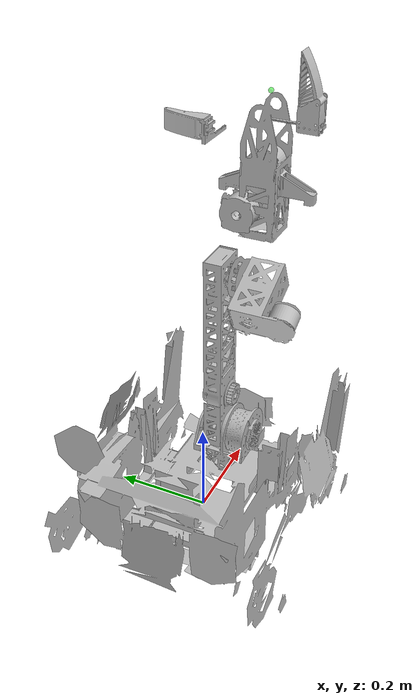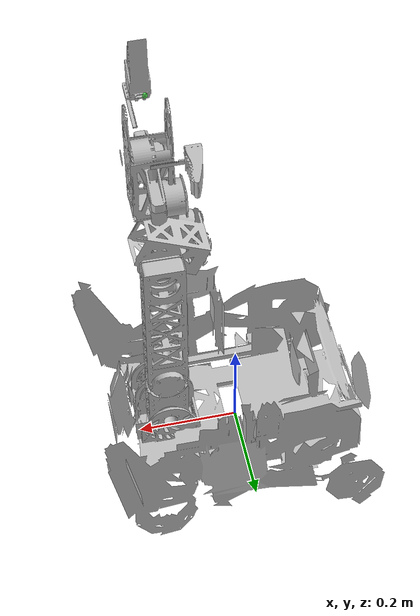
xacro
<?xml version="1.0"?>
<robot xmlns:xacro="http://www.ros.org/wiki/xacro" name="engineer_v3">
    <xacro:arg name="initial_positions_file" default="initial_positions.yaml" />

    <!-- Import engineer_v3 urdf file -->
    <xacro:include filename="$(find engineer_description)/urdf/engineer_v3.urdf" />

    <!-- Import control_xacro -->
    <xacro:include filename="engineer_v3.ros2_control.xacro" />

    <xacro:engineer_v3_ros2_control name="FakeSystem" initial_positions_file="$(arg initial_positions_file)"/>

</robot>

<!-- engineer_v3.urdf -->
<robot
  name="engineer_v3">
  <link
    name="base_link">
    <visual>
      <origin
        xyz="0 0 0"
        rpy="0 0 0" />
      <geometry>
        <mesh
          filename="package://engineer_description/meshes/dae/base_link_visual.dae" />
      </geometry>
      <material
        name="">
        <color
          rgba="0.752941176470588 0.752941176470588 0.752941176470588 1" />
      </material>
    </visual>
    <collision>
      <origin
        xyz="0 0 0"
        rpy="0 0 0" />
      <geometry>
        <mesh
          filename="package://engineer_description/meshes/stl/base_link_collision.stl" />
      </geometry>
    </collision>
  </link>
  <link
    name="link1">
    <inertial>
      <origin
        xyz="0.000366137945781442 -0.00105304404993535 -0.0616109170802233"
        rpy="0 0 0" />
      <mass
        value="1.17098454636785" />
      <inertia
        ixx="0.00109306734552794"
        ixy="-4.36857458704801E-07"
        ixz="-1.06862312344357E-05"
        iyy="0.0016616402484593"
        iyz="-8.42838995009536E-06"
        izz="0.00124060937006993" />
    </inertial>
    <visual>
      <origin
        xyz="0 0 0"
        rpy="0 0 0" />
      <geometry>
        <mesh
          filename="package://engineer_description/meshes/dae/link1_visual.dae" />
      </geometry>
      <material
        name="">
        <color
          rgba="0.752941176470588 0.752941176470588 0.752941176470588 1" />
      </material>
    </visual>
    <collision>
      <origin
        xyz="0 0 0"
        rpy="0 0 0" />
      <geometry>
        <mesh
          filename="package://engineer_description/meshes/stl/link1_collision.stl" />
      </geometry>
    </collision>
  </link>
  <joint
    name="joint1"
    type="revolute">
    <origin
      xyz="0.145999999999969 0 0.0249999999999997"
      rpy="-3.14159265358979 0 3.14159265358979" />
    <parent
      link="base_link" />
    <child
      link="link1" />
    <axis
      xyz="0 0 -1" />
    <limit effort="100" lower="-3.14159265358979" upper="3.14159265358979" velocity="1.0" />
  </joint>
  <link
    name="link2">
    <inertial>
      <origin
        xyz="-0.200592245791256 0.0657205410737112 -0.018830287831907"
        rpy="0 0 0" />
      <mass
        value="0.875762307461488" />
      <inertia
        ixx="0.00140154690392888"
        ixy="0.00207467055469233"
        ixz="5.34961661049531E-05"
        iyy="0.00706101645253342"
        iyz="-1.76758268134214E-05"
        izz="0.00825152252887499" />
    </inertial>
    <visual>
      <origin
        xyz="0 0 0"
        rpy="0 0 0" />
      <geometry>
        <mesh
          filename="package://engineer_description/meshes/dae/link2_visual.dae" />
      </geometry>
      <material
        name="">
        <color
          rgba="0.752941176470588 0.752941176470588 0.752941176470588 1" />
      </material>
    </visual>
    <collision>
      <origin
        xyz="0 0 0"
        rpy="0 0 0" />
      <geometry>
        <mesh
          filename="package://engineer_description/meshes/stl/link2_collision.stl" />
      </geometry>
    </collision>
  </link>
  <joint
    name="joint2"
    type="revolute">
    <origin
      xyz="0 0.0428 -0.08"
      rpy="-1.5707963267949 -1.26 0" />
    <parent
      link="link1" />
    <child
      link="link2" />
    <axis
      xyz="0 0 1" />
    <limit effort="100" lower="-1.7" upper="1.7" velocity="1.0" />
  </joint>
  <link
    name="link3">
    <inertial>
      <origin
        xyz="0.0566723598455576 -0.0273619588785726 0.0396529673877428"
        rpy="0 0 0" />
      <mass
        value="0.839227797526478" />
      <inertia
        ixx="0.000625820314740854"
        ixy="-2.67749854697517E-06"
        ixz="4.62474918005342E-06"
        iyy="0.000621509803460847"
        iyz="-2.39057013845027E-06"
        izz="0.000645188172602444" />
    </inertial>
    <visual>
      <origin
        xyz="0 0 0"
        rpy="0 0 0" />
      <geometry>
        <mesh
          filename="package://engineer_description/meshes/dae/link3_visual.dae" />
      </geometry>
      <material
        name="">
        <color
          rgba="0.752941176470588 0.752941176470588 0.752941176470588 1" />
      </material>
    </visual>
    <collision>
      <origin
        xyz="0 0 0"
        rpy="0 0 0" />
      <geometry>
        <mesh
          filename="package://engineer_description/meshes/stl/link3_collision.stl" />
      </geometry>
    </collision>
  </link>
  <joint
    name="joint3"
    type="revolute">
    <origin
      xyz="-0.370652268510716 0.12131321382222 -0.0709999999999994"
      rpy="3.14159265358979 0 2.389" />
    <parent
      link="link2" />
    <child
      link="link3" />
    <axis
      xyz="0 0 1" />
    <limit effort="100" lower="-3.14159265358979" upper="3.14159265358979" velocity="1.0" />
  </joint>
  <link
    name="link4">
    <inertial>
      <origin
        xyz="0.000489793827840729 -0.00125702213156248 0.010845047851669"
        rpy="0 0 0" />
      <mass
        value="0.114298072057801" />
      <inertia
        ixx="6.11715826170932E-05"
        ixy="1.53101641703297E-07"
        ixz="-1.0585063422655E-08"
        iyy="4.97757808791351E-05"
        iyz="-4.82662206677388E-08"
        izz="6.72625595976108E-05" />
    </inertial>
    <visual>
      <origin
        xyz="0 0 0"
        rpy="0 0 0" />
      <geometry>
        <mesh
          filename="package://engineer_description/meshes/dae/link4_visual.dae" />
      </geometry>
      <material
        name="">
        <color
          rgba="0.752941176470588 0.752941176470588 0.752941176470588 1" />
      </material>
    </visual>
    <collision>
      <origin
        xyz="0 0 0"
        rpy="0 0 0" />
      <geometry>
        <mesh
          filename="package://engineer_description/meshes/stl/link4_collision.stl" />
      </geometry>
    </collision>
  </link>
  <joint
    name="joint4"
    type="revolute">
    <origin
      xyz="0.104460296822831 -0.0504385406974249 0.0300000000000038"
      rpy="0.4498328363521 1.5707963267949 0" />
    <parent
      link="link3" />
    <child
      link="link4" />
    <axis
      xyz="0 0 -1" />
    <limit effort="100" lower="-3.14159265358979" upper="3.14159265358979" velocity="1.0" />
  </joint>
  <link
    name="link5">
    <inertial>
      <origin
        xyz="0.0501596122333089 6.17326938406881E-06 -0.0346130198917452"
        rpy="0 0 0" />
      <mass
        value="0.43352523929611" />
      <inertia
        ixx="0.000209260077610988"
        ixy="9.4643682642116E-09"
        ixz="4.84408287398383E-07"
        iyy="0.0001512817382304"
        iyz="-5.60770390367035E-09"
        izz="0.00016363360797388" />
    </inertial>
    <visual>
      <origin
        xyz="0 0 0"
        rpy="0 0 0" />
      <geometry>
        <mesh
          filename="package://engineer_description/meshes/dae/link5_visual.dae" />
      </geometry>
      <material
        name="">
        <color
          rgba="0.752941176470588 0.752941176470588 0.752941176470588 1" />
      </material>
    </visual>
    <collision>
      <origin
        xyz="0 0 0"
        rpy="0 0 0" />
      <geometry>
        <mesh
          filename="package://engineer_description/meshes/stl/link5_collision.stl" />
      </geometry>
    </collision>
  </link>
  <joint
    name="joint5"
    type="revolute">
    <origin
      xyz="0.034 0 0.0430000000000003"
      rpy="0 -1.5707963267949 3.14" />
    <parent
      link="link4" />
    <child
      link="link5" />
    <axis
      xyz="0 0 1" />
    <limit effort="100" lower="-2.19" upper="2.19" velocity="1.0" />
  </joint>
  <link
    name="link6">
    <inertial>
      <origin
        xyz="-3.35960868428631E-05 6.48599977004505E-07 0.0400095071577677"
        rpy="0 0 0" />
      <mass
        value="0.244296826583264" />
      <inertia
        ixx="6.85451051739142E-05"
        ixy="2.71962936853272E-08"
        ixz="-4.18330392022927E-08"
        iyy="0.000243340316781081"
        iyz="-5.31123847823827E-10"
        izz="0.000284315289882117" />
    </inertial>
    <visual>
      <origin
        xyz="0 0 0"
        rpy="0 0 0" />
      <geometry>
        <mesh
          filename="package://engineer_description/meshes/dae/link6_visual.dae" />
      </geometry>
      <material
        name="">
        <color
          rgba="0.752941176470588 0.752941176470588 0.752941176470588 1" />
      </material>
    </visual>
    <collision>
      <origin
        xyz="0 0 0"
        rpy="0 0 0" />
      <geometry>
        <mesh
          filename="package://engineer_description/meshes/stl/link6_collision.stl" />
      </geometry>
    </collision>
  </link>
  <joint
    name="joint6"
    type="revolute">
    <origin
      xyz="0.0964999999999911 0 -0.038000000000001"
      rpy="0 -1.5707963267949 3.14159265358979" />
    <parent
      link="link5" />
    <child
      link="link6" />
    <axis
      xyz="0 0 1" />
    <limit effort="100" lower="-3.14159265358979" upper="3.14159265358979" velocity="1.0" />
  </joint>
  <link
    name="left_finger_link">
    <inertial>
      <origin
        xyz="0.0413522758703984 0.000912786640920038 0.0180789252118048"
        rpy="0 0 0" />
      <mass
        value="0.0892620352075858" />
      <inertia
        ixx="2.02884451605728E-05"
        ixy="-1.35853302398138E-08"
        ixz="-6.88732390085087E-06"
        iyy="7.58924940771188E-05"
        iyz="-4.75757382096248E-08"
        izz="6.84747006745124E-05" />
    </inertial>
    <visual>
      <origin
        xyz="0 0 0"
        rpy="0 0 0" />
      <geometry>
        <mesh
          filename="package://engineer_description/meshes/dae/left_finger_link_visual.dae" />
      </geometry>
      <material
        name="">
        <color
          rgba="0.752941176470588 0.752941176470588 0.752941176470588 1" />
      </material>
    </visual>
    <collision>
      <origin
        xyz="0 0 0"
        rpy="0 0 0" />
      <geometry>
        <mesh
          filename="package://engineer_description/meshes/stl/left_finger_link_collision.stl" />
      </geometry>
    </collision>
  </link>
  <joint
    name="left_finger_joint"
    type="prismatic">
    <origin
      xyz="-0.09199999999988 0 0.0649999999999989"
      rpy="0 -1.5707963267949 3.14" />
    <parent
      link="link6" />
    <child
      link="left_finger_link" />
    <axis
      xyz="0 0 1" />
    <limit effort="100" lower="0" upper="0.03" velocity="0.02" />
  </joint>
  <link
    name="right_finger_link">
    <inertial>
      <origin
        xyz="0.041352275870385 -0.000913374572594938 -0.0180789252121382"
        rpy="0 0 0" />
      <mass
        value="0.0892620352075858" />
      <inertia
        ixx="2.02884451605797E-05"
        ixy="1.35650620547402E-08"
        ixz="6.88732390084103E-06"
        iyy="7.58924940771251E-05"
        iyz="-4.75757382097382E-08"
        izz="6.84747006745118E-05" />
    </inertial>
    <visual>
      <origin
        xyz="0 0 0"
        rpy="0 0 0" />
      <geometry>
        <mesh
          filename="package://engineer_description/meshes/dae/right_finger_link_visual.dae" />
      </geometry>
      <material
        name="">
        <color
          rgba="0.752941176470588 0.752941176470588 0.752941176470588 1" />
      </material>
    </visual>
    <collision>
      <origin
        xyz="0 0 0"
        rpy="0 0 0" />
      <geometry>
        <mesh
          filename="package://engineer_description/meshes/stl/right_finger_link_collision.stl" />
      </geometry>
    </collision>
  </link>
  <joint
    name="right_finger_joint"
    type="prismatic">
    <origin
      xyz="0.09199999999988 0 0.0649999999999989"
      rpy="0 -1.5707963267949 3.14" />
    <parent
      link="link6" />
    <child
      link="right_finger_link" />
    <axis
      xyz="0 0 -1" />
    <limit effort="100" lower="0" upper="0.03" velocity="0.02" />
    <mimic joint="left_finger_joint" />
  </joint>
 <link name="tcp_link">
    <visual>
      <origin xyz="0 0 0" rpy="0 0 0" />
      <geometry>
        <!-- 半径设为 1cm，方便观察 -->
        <sphere radius="0.005" />
      </geometry>
      <material name="green_transparent">
        <color rgba="0 1 0 0.5" />
      </material>
    </visual>
  </link>
  <joint name="tcp_joint" type="fixed">
    <origin xyz="0 0 0.125" rpy="0 0 0" />
    <parent link="link6" />
    <child link="tcp_link" />
  </joint>
</robot>
